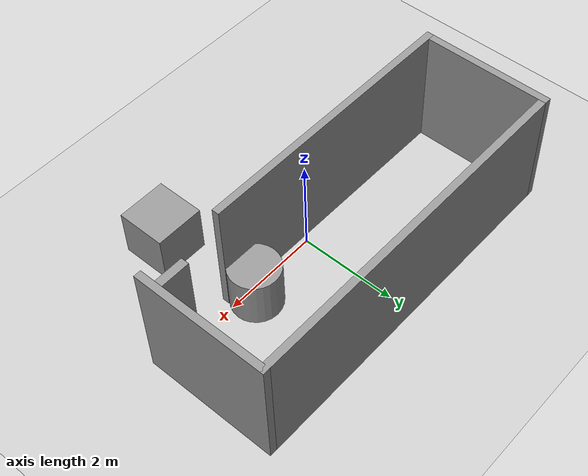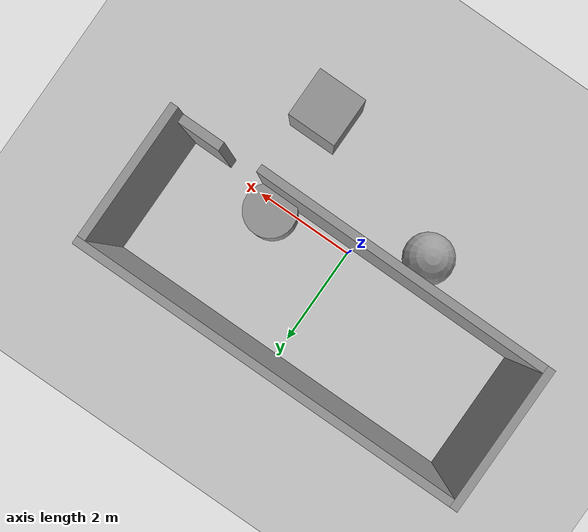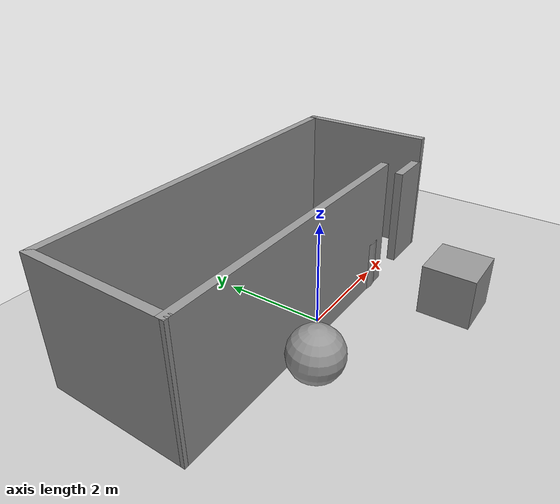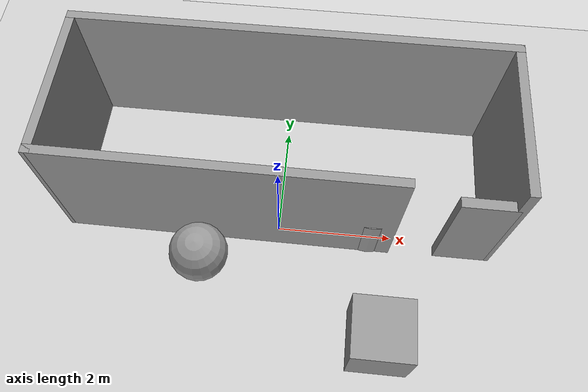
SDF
<sdf version="1.7">
 <world name="default">
  <light name="sun" type="directional">
   <pose>0 0 10 0 -0 0</pose>
   <diffuse>0.8 0.8 0.8 1</diffuse>
   <specular>0.2 0.2 0.2 1</specular>
   <attenuation>
    <range>1000</range>
    <constant>0.9</constant>
    <linear>0.01</linear>
    <quadratic>0.001</quadratic>
   </attenuation>
   <direction>-0.5 0.1 -0.9</direction>
   <spot><inner_angle>0</inner_angle><outer_angle>0</outer_angle><falloff>0</falloff></spot>
  </light>
  <model name="ground_plane">
   <static>1</static>
   <link name="link">
    <collision name="collision">
     <geometry><plane><normal>0 0 1</normal><size>100 100</size></plane></geometry>
     <surface>
      <contact><collide_bitmask>65535</collide_bitmask></contact>
      <friction><ode><mu>100</mu><mu2>50</mu2></ode></friction>
     </surface>
    </collision>
    <visual name="visual">
     <cast_shadows>0</cast_shadows>
     <geometry><plane><normal>0 0 1</normal><size>100 100</size></plane></geometry>
     <material>
      <script><uri>file://media/materials/scripts/gazebo.material</uri><name>Gazebo/Grey</name></script>
     </material>
    </visual>
   </link>
  </model>
  <gravity>0 0 -9.8</gravity>
  <magnetic_field>6e-06 2.3e-05 -4.2e-05</magnetic_field>
  <atmosphere type="adiabatic"/>
  <physics type="ode">
   <max_step_size>0.001</max_step_size>
   <real_time_factor>1</real_time_factor>
   <real_time_update_rate>1000</real_time_update_rate>
  </physics>
  <scene><ambient>0.4 0.4 0.4 1</ambient><background>0.7 0.7 0.7 1</background><shadows>1</shadows></scene>
  <spherical_coordinates>
   <surface_model>EARTH_WGS84</surface_model>
   <latitude_deg>0</latitude_deg>
   <longitude_deg>0</longitude_deg>
   <elevation>0</elevation>
   <heading_deg>0</heading_deg>
  </spherical_coordinates>
  <model name="unit_sphere">
   <pose>-1.28536 -0.763382 0.5 0.0503 -0.001819 0.000421</pose>
   <link name="link">
    <inertial>
     <mass>1</mass>
     <inertia><ixx>0.1</ixx><ixy>0</ixy><ixz>0</ixz><iyy>0.1</iyy><iyz>0</iyz><izz>0.1</izz></inertia>
    </inertial>
    <collision name="collision"><geometry><sphere><radius>0.5</radius></sphere></geometry></collision>
    <visual name="visual">
     <geometry><sphere><radius>0.5</radius></sphere></geometry>
     <material>
      <script><name>Gazebo/Grey</name><uri>file://media/materials/scripts/gazebo.material</uri></script>
     </material>
    </visual>
   </link>
  </model>
  <model name="unit_cylinder">
   <pose>1.58848 0.212716 0.499997 3e-06 4e-06 -0</pose>
   <link name="link">
    <inertial>
     <mass>1</mass>
     <inertia><ixx>0.145833</ixx><ixy>0</ixy><ixz>0</ixz><iyy>0.145833</iyy><iyz>0</iyz><izz>0.125</izz></inertia>
    </inertial>
    <collision name="collision">
     <geometry><cylinder><radius>0.5</radius><length>1</length></cylinder></geometry>
    </collision>
    <visual name="visual">
     <geometry><cylinder><radius>0.5</radius><length>1</length></cylinder></geometry>
     <material>
      <script><name>Gazebo/Grey</name><uri>file://media/materials/scripts/gazebo.material</uri></script>
     </material>
    </visual>
   </link>
  </model>
  <light name="user_point_light_0" type="point">
   <pose>-16.1854 13.6575 1 0 -0 0</pose>
   <diffuse>0.5 0.5 0.5 1</diffuse>
   <specular>0.1 0.1 0.1 1</specular>
   <attenuation>
    <range>20</range>
    <constant>0.5</constant>
    <linear>0.01</linear>
    <quadratic>0.001</quadratic>
   </attenuation>
   <cast_shadows>0</cast_shadows>
   <direction>0 0 -1</direction>
  </light>
  <model name="unit_box">
   <pose>1.80846 -1.89434 0.499995 -1e-05 -0 0</pose>
   <link name="link">
    <inertial>
     <mass>1</mass>
     <inertia>
      <ixx>0.166667</ixx>
      <ixy>0</ixy>
      <ixz>0</ixz>
      <iyy>0.166667</iyy>
      <iyz>0</iyz>
      <izz>0.166667</izz>
     </inertia>
    </inertial>
    <collision name="collision"><geometry><box><size>1 1 1</size></box></geometry></collision>
    <visual name="visual">
     <geometry><box><size>1 1 1</size></box></geometry>
     <material>
      <script><name>Gazebo/Grey</name><uri>file://media/materials/scripts/gazebo.material</uri></script>
     </material>
    </visual>
   </link>
  </model>
  <light name="user_spot_light_0" type="spot">
   <pose>-0.21785 1.5811 1 0 -0 0</pose>
   <diffuse>0.5 0.5 0.5 1</diffuse>
   <specular>0.1 0.1 0.1 1</specular>
   <direction>0 0 -1</direction>
   <attenuation>
    <range>20</range>
    <constant>0.5</constant>
    <linear>0.01</linear>
    <quadratic>0.001</quadratic>
   </attenuation>
   <cast_shadows>0</cast_shadows>
   <spot><inner_angle>0.6</inner_angle><outer_angle>1</outer_angle><falloff>1</falloff></spot>
  </light>
  <model name="my_world.world">
   <pose>-0.015134 1.11987 0 0 -0 0</pose>
   <link name="Door_0">
    <collision name="Door_0_Collision">
     <geometry><box><size>0.9 0.17 2</size></box></geometry>
     <pose>0 0 1 0 -0 0</pose>
    </collision>
    <visual name="Door_0_Visual">
     <pose>0 0 1 0 -0 0</pose>
     <geometry><box><size>0.9 0.17 2</size></box></geometry>
     <material>
      <script><uri>file://media/materials/scripts/gazebo.material</uri><name>Gazebo/Grey</name></script>
     </material>
    </visual>
    <pose>3.22513 -1.27987 0 0 -0 0</pose>
   </link>
   <link name="Wall_0">
    <collision name="Wall_0_Collision">
     <geometry><box><size>2.75 0.15 2.5</size></box></geometry>
     <pose>0 0 1.25 0 -0 0</pose>
    </collision>
    <visual name="Wall_0_Visual">
     <pose>0 0 1.25 0 -0 0</pose>
     <geometry><box><size>2.75 0.15 2.5</size></box></geometry>
     <material>
      <script><uri>file://media/materials/scripts/gazebo.material</uri><name>Gazebo/Grey</name></script>
      <ambient>1 1 1 1</ambient>
     </material>
     <meta><layer>0</layer></meta>
    </visual>
    <pose>-3.67487 0.010134 0 0 -0 1.5708</pose>
   </link>
   <link name="Wall_1">
    <collision name="Wall_1_Collision">
     <geometry><box><size>7.5 0.15 2.5</size></box></geometry>
     <pose>0 0 1.25 0 -0 0</pose>
    </collision>
    <visual name="Wall_1_Visual">
     <pose>0 0 1.25 0 -0 0</pose>
     <geometry><box><size>7.5 0.15 2.5</size></box></geometry>
     <material>
      <script><uri>file://media/materials/scripts/gazebo.material</uri><name>Gazebo/Grey</name></script>
      <ambient>1 1 1 1</ambient>
     </material>
     <meta><layer>0</layer></meta>
    </visual>
    <pose>0.000134 1.31013 0 0 -0 0</pose>
   </link>
   <link name="Wall_2">
    <collision name="Wall_2_Collision">
     <geometry><box><size>2.75 0.15 2.5</size></box></geometry>
     <pose>0 0 1.25 0 -0 0</pose>
    </collision>
    <visual name="Wall_2_Visual">
     <pose>0 0 1.25 0 -0 0</pose>
     <geometry><box><size>2.75 0.15 2.5</size></box></geometry>
     <material>
      <script><uri>file://media/materials/scripts/gazebo.material</uri><name>Gazebo/Grey</name></script>
      <ambient>1 1 1 1</ambient>
     </material>
     <meta><layer>0</layer></meta>
    </visual>
    <pose>3.67513 0.010134 0 0 -0 -1.5708</pose>
   </link>
   <link name="Wall_4">
    <collision name="Wall_4_Collision">
     <geometry><box><size>5.74004 0.15 2.5</size></box></geometry>
     <pose>0 0 1.25 0 -0 0</pose>
    </collision>
    <visual name="Wall_4_Visual">
     <pose>0 0 1.25 0 -0 0</pose>
     <geometry><box><size>5.74004 0.15 2.5</size></box></geometry>
     <material>
      <script><uri>file://media/materials/scripts/gazebo.material</uri><name>Gazebo/Grey</name></script>
      <ambient>1 1 1 1</ambient>
     </material>
     <meta><layer>0</layer></meta>
    </visual>
    <pose>-0.879866 -1.29987 0 0 -0 3.13802</pose>
   </link>
   <static>1</static>
  </model>
 </world>
</sdf>
